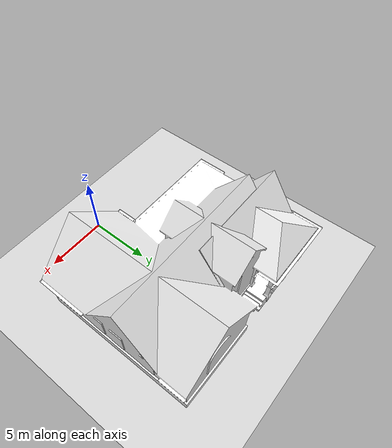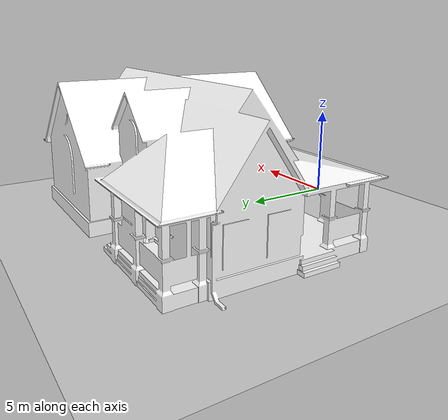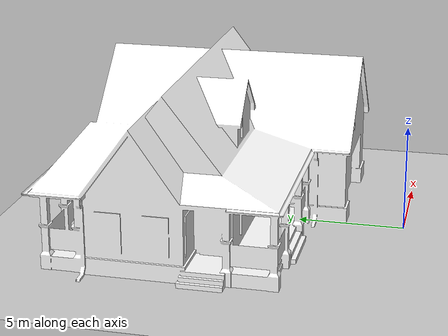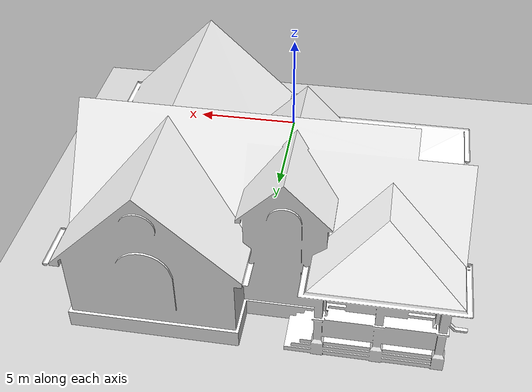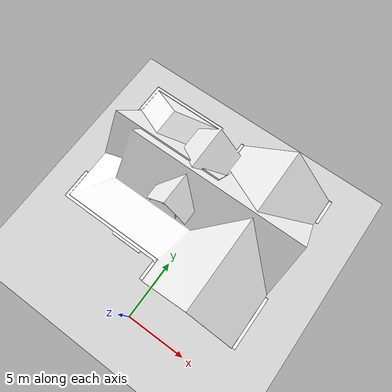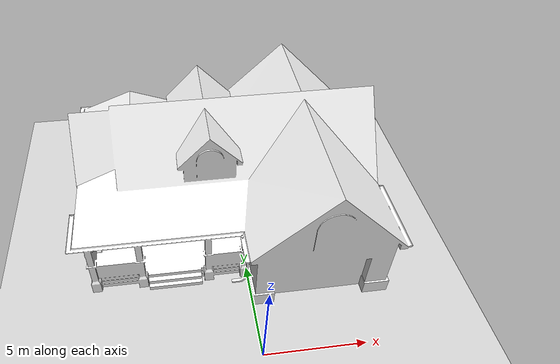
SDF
<sdf version="1.6">
 <world name="default">
  <plugin name="gazebo_octomap" filename="librotors_gazebo_octomap_plugin.so"/>
  <light name="sun" type="directional">
   <pose>0 0 10 0 -0 0</pose>
   <diffuse>0.8 0.8 0.8 1</diffuse>
   <specular>0.2 0.2 0.2 1</specular>
   <attenuation>
    <range>1000</range>
    <constant>0.9</constant>
    <linear>0.01</linear>
    <quadratic>0.001</quadratic>
   </attenuation>
   <direction>-0.5 0.1 -0.9</direction>
  </light>
  <model name="ground_plane">
   <static>1</static>
   <link name="link">
    <collision name="collision">
     <geometry><plane><normal>0 0 1</normal><size>100 100</size></plane></geometry>
     <surface>
      <contact><collide_bitmask>65535</collide_bitmask></contact>
      <friction><ode><mu>100</mu><mu2>50</mu2></ode></friction>
     </surface>
    </collision>
    <visual name="visual">
     <cast_shadows>0</cast_shadows>
     <geometry><plane><normal>0 0 1</normal><size>100 100</size></plane></geometry>
     <material>
      <script><uri>file://media/materials/scripts/gazebo.material</uri><name>Gazebo/Grey</name></script>
     </material>
    </visual>
   </link>
  </model>
  <gravity>0 0 -9.8</gravity>
  <magnetic_field>6e-06 2.3e-05 -4.2e-05</magnetic_field>
  <atmosphere type="adiabatic"/>
  <physics name="default_physics" default="0" type="ode">
   <max_step_size>0.001</max_step_size>
   <real_time_factor>1</real_time_factor>
   <real_time_update_rate>1000</real_time_update_rate>
  </physics>
  <scene><ambient>0.4 0.4 0.4 1</ambient><background>0.7 0.7 0.7 1</background><shadows>1</shadows></scene>
  <audio><device>default</device></audio>
  <spherical_coordinates>
   <surface_model>EARTH_WGS84</surface_model>
   <latitude_deg>0</latitude_deg>
   <longitude_deg>0</longitude_deg>
   <elevation>0</elevation>
   <heading_deg>0</heading_deg>
  </spherical_coordinates>
  <model name="House 1">
   <static>1</static>
   <link name="link">
    <collision name="collision">
     <geometry><mesh><uri>model://house_1/meshes/house_1.dae</uri><scale>1.5 1.5 1.5</scale></mesh></geometry>
    </collision>
    <visual name="visual">
     <geometry><mesh><uri>model://house_1/meshes/house_1.dae</uri><scale>1.5 1.5 1.5</scale></mesh></geometry>
     <material>
      <script>
       <uri>model://house_1/materials/scripts</uri>
       <uri>model://house_1/materials/textures</uri>
       <name>House_1/Diffuse</name>
      </script>
      <shader type="normal_map_tangent_space"><normal_map>House_1_Normal.png</normal_map></shader>
     </material>
    </visual>
   </link>
   <pose>-0.381159 9.44294 0 0 -0 0</pose>
  </model>
 </world>
</sdf>
